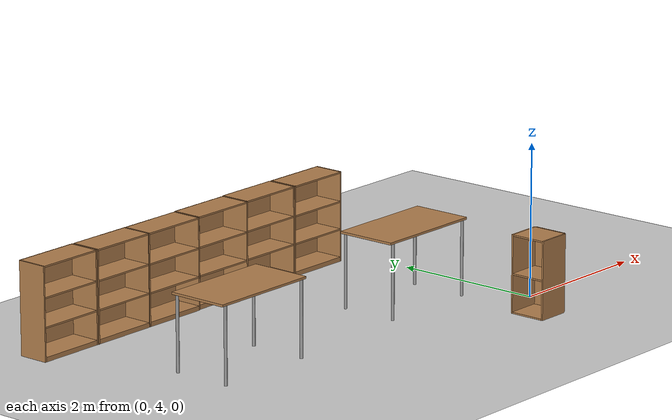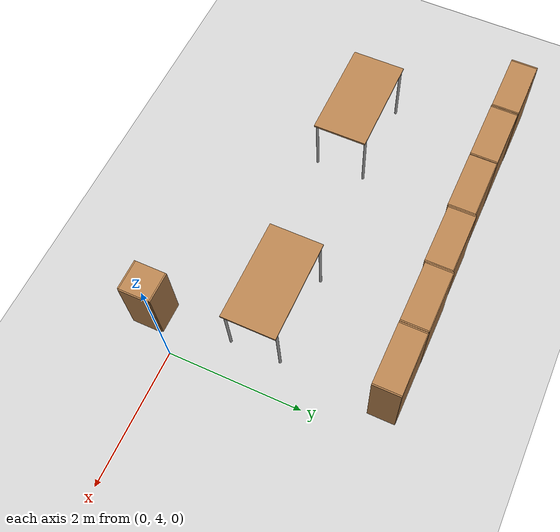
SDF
<sdf version="1.6">
 <world name="default">
  <model name="ground_plane">
   <static>1</static>
   <link name="link">
    <collision name="collision">
     <geometry><plane><normal>0 0 1</normal><size>100 100</size></plane></geometry>
     <surface><friction><ode><mu>100</mu><mu2>50</mu2></ode></friction></surface>
    </collision>
    <visual name="visual">
     <cast_shadows>0</cast_shadows>
     <geometry><plane><normal>0 0 1</normal><size>100 100</size></plane></geometry>
     <material>
      <script><uri>file://media/materials/scripts/gazebo.material</uri><name>Gazebo/Grey</name></script>
     </material>
    </visual>
   </link>
  </model>
  <model name="bookshelf_0">
   <static>1</static>
   <link name="link">
    <inertial><mass>1</mass></inertial>
    <collision name="back">
     <pose>0 0.005 0.6 0 -0 0</pose>
     <geometry><box><size>0.9 0.01 1.2</size></box></geometry>
    </collision>
    <visual name="visual1">
     <pose>0 0.005 0.6 0 -0 0</pose>
     <geometry><box><size>0.9 0.01 1.2</size></box></geometry>
     <material>
      <script><uri>file://media/materials/scripts/gazebo.material</uri><name>Gazebo/Wood</name></script>
     </material>
    </visual>
    <collision name="left_side">
     <pose>0.45 -0.195 0.6 0 -0 0</pose>
     <geometry><box><size>0.02 0.4 1.2</size></box></geometry>
    </collision>
    <visual name="visual2">
     <pose>0.45 -0.195 0.6 0 -0 0</pose>
     <geometry><box><size>0.02 0.4 1.2</size></box></geometry>
     <material>
      <script><uri>file://media/materials/scripts/gazebo.material</uri><name>Gazebo/Wood</name></script>
     </material>
    </visual>
    <collision name="right_side">
     <pose>-0.45 -0.195 0.6 0 -0 0</pose>
     <geometry><box><size>0.02 0.4 1.2</size></box></geometry>
    </collision>
    <visual name="visual3">
     <pose>-0.45 -0.195 0.6 0 -0 0</pose>
     <geometry><box><size>0.02 0.4 1.2</size></box></geometry>
     <material>
      <script><uri>file://media/materials/scripts/gazebo.material</uri><name>Gazebo/Wood</name></script>
     </material>
    </visual>
    <collision name="bottom">
     <pose>0 -0.195 0.03 0 -0 0</pose>
     <geometry><box><size>0.88 0.4 0.06</size></box></geometry>
    </collision>
    <visual name="visual4">
     <pose>0 -0.195 0.03 0 -0 0</pose>
     <geometry><box><size>0.88 0.4 0.06</size></box></geometry>
     <material>
      <script><uri>file://media/materials/scripts/gazebo.material</uri><name>Gazebo/Wood</name></script>
     </material>
    </visual>
    <collision name="top">
     <pose>0 -0.195 1.19 0 -0 0</pose>
     <geometry><box><size>0.88 0.4 0.02</size></box></geometry>
    </collision>
    <visual name="visual5">
     <pose>0 -0.195 1.19 0 -0 0</pose>
     <geometry><box><size>0.88 0.4 0.02</size></box></geometry>
     <material>
      <script><uri>file://media/materials/scripts/gazebo.material</uri><name>Gazebo/Wood</name></script>
     </material>
    </visual>
    <collision name="low_shelf">
     <pose>0 -0.195 0.43 0 -0 0</pose>
     <geometry><box><size>0.88 0.4 0.02</size></box></geometry>
    </collision>
    <visual name="visual6">
     <pose>0 -0.195 0.43 0 -0 0</pose>
     <geometry><box><size>0.88 0.4 0.02</size></box></geometry>
     <material>
      <script><uri>file://media/materials/scripts/gazebo.material</uri><name>Gazebo/Wood</name></script>
     </material>
    </visual>
    <collision name="high_shelf">
     <pose>0 -0.195 0.8 0 -0 0</pose>
     <geometry><box><size>0.88 0.4 0.02</size></box></geometry>
    </collision>
    <visual name="visual7">
     <pose>0 -0.195 0.8 0 -0 0</pose>
     <geometry><box><size>0.88 0.4 0.02</size></box></geometry>
     <material>
      <script><uri>file://media/materials/scripts/gazebo.material</uri><name>Gazebo/Wood</name></script>
     </material>
    </visual>
   </link>
   <pose>-5.37969 7.19324 0 0 -0 0</pose>
  </model>
  <model name="bookshelf_1">
   <static>1</static>
   <link name="link">
    <inertial><mass>1</mass></inertial>
    <collision name="back">
     <pose>0 0.005 0.6 0 -0 0</pose>
     <geometry><box><size>0.9 0.01 1.2</size></box></geometry>
    </collision>
    <visual name="visual1">
     <pose>0 0.005 0.6 0 -0 0</pose>
     <geometry><box><size>0.9 0.01 1.2</size></box></geometry>
     <material>
      <script><uri>file://media/materials/scripts/gazebo.material</uri><name>Gazebo/Wood</name></script>
     </material>
    </visual>
    <collision name="left_side">
     <pose>0.45 -0.195 0.6 0 -0 0</pose>
     <geometry><box><size>0.02 0.4 1.2</size></box></geometry>
    </collision>
    <visual name="visual2">
     <pose>0.45 -0.195 0.6 0 -0 0</pose>
     <geometry><box><size>0.02 0.4 1.2</size></box></geometry>
     <material>
      <script><uri>file://media/materials/scripts/gazebo.material</uri><name>Gazebo/Wood</name></script>
     </material>
    </visual>
    <collision name="right_side">
     <pose>-0.45 -0.195 0.6 0 -0 0</pose>
     <geometry><box><size>0.02 0.4 1.2</size></box></geometry>
    </collision>
    <visual name="visual3">
     <pose>-0.45 -0.195 0.6 0 -0 0</pose>
     <geometry><box><size>0.02 0.4 1.2</size></box></geometry>
     <material>
      <script><uri>file://media/materials/scripts/gazebo.material</uri><name>Gazebo/Wood</name></script>
     </material>
    </visual>
    <collision name="bottom">
     <pose>0 -0.195 0.03 0 -0 0</pose>
     <geometry><box><size>0.88 0.4 0.06</size></box></geometry>
    </collision>
    <visual name="visual4">
     <pose>0 -0.195 0.03 0 -0 0</pose>
     <geometry><box><size>0.88 0.4 0.06</size></box></geometry>
     <material>
      <script><uri>file://media/materials/scripts/gazebo.material</uri><name>Gazebo/Wood</name></script>
     </material>
    </visual>
    <collision name="top">
     <pose>0 -0.195 1.19 0 -0 0</pose>
     <geometry><box><size>0.88 0.4 0.02</size></box></geometry>
    </collision>
    <visual name="visual5">
     <pose>0 -0.195 1.19 0 -0 0</pose>
     <geometry><box><size>0.88 0.4 0.02</size></box></geometry>
     <material>
      <script><uri>file://media/materials/scripts/gazebo.material</uri><name>Gazebo/Wood</name></script>
     </material>
    </visual>
    <collision name="low_shelf">
     <pose>0 -0.195 0.43 0 -0 0</pose>
     <geometry><box><size>0.88 0.4 0.02</size></box></geometry>
    </collision>
    <visual name="visual6">
     <pose>0 -0.195 0.43 0 -0 0</pose>
     <geometry><box><size>0.88 0.4 0.02</size></box></geometry>
     <material>
      <script><uri>file://media/materials/scripts/gazebo.material</uri><name>Gazebo/Wood</name></script>
     </material>
    </visual>
    <collision name="high_shelf">
     <pose>0 -0.195 0.8 0 -0 0</pose>
     <geometry><box><size>0.88 0.4 0.02</size></box></geometry>
    </collision>
    <visual name="visual7">
     <pose>0 -0.195 0.8 0 -0 0</pose>
     <geometry><box><size>0.88 0.4 0.02</size></box></geometry>
     <material>
      <script><uri>file://media/materials/scripts/gazebo.material</uri><name>Gazebo/Wood</name></script>
     </material>
    </visual>
   </link>
   <pose>-4.45545 7.18903 0 0 -0 0</pose>
  </model>
  <model name="bookshelf_2">
   <static>1</static>
   <link name="link">
    <inertial><mass>1</mass></inertial>
    <collision name="back">
     <pose>0 0.005 0.6 0 -0 0</pose>
     <geometry><box><size>0.9 0.01 1.2</size></box></geometry>
    </collision>
    <visual name="visual1">
     <pose>0 0.005 0.6 0 -0 0</pose>
     <geometry><box><size>0.9 0.01 1.2</size></box></geometry>
     <material>
      <script><uri>file://media/materials/scripts/gazebo.material</uri><name>Gazebo/Wood</name></script>
     </material>
    </visual>
    <collision name="left_side">
     <pose>0.45 -0.195 0.6 0 -0 0</pose>
     <geometry><box><size>0.02 0.4 1.2</size></box></geometry>
    </collision>
    <visual name="visual2">
     <pose>0.45 -0.195 0.6 0 -0 0</pose>
     <geometry><box><size>0.02 0.4 1.2</size></box></geometry>
     <material>
      <script><uri>file://media/materials/scripts/gazebo.material</uri><name>Gazebo/Wood</name></script>
     </material>
    </visual>
    <collision name="right_side">
     <pose>-0.45 -0.195 0.6 0 -0 0</pose>
     <geometry><box><size>0.02 0.4 1.2</size></box></geometry>
    </collision>
    <visual name="visual3">
     <pose>-0.45 -0.195 0.6 0 -0 0</pose>
     <geometry><box><size>0.02 0.4 1.2</size></box></geometry>
     <material>
      <script><uri>file://media/materials/scripts/gazebo.material</uri><name>Gazebo/Wood</name></script>
     </material>
    </visual>
    <collision name="bottom">
     <pose>0 -0.195 0.03 0 -0 0</pose>
     <geometry><box><size>0.88 0.4 0.06</size></box></geometry>
    </collision>
    <visual name="visual4">
     <pose>0 -0.195 0.03 0 -0 0</pose>
     <geometry><box><size>0.88 0.4 0.06</size></box></geometry>
     <material>
      <script><uri>file://media/materials/scripts/gazebo.material</uri><name>Gazebo/Wood</name></script>
     </material>
    </visual>
    <collision name="top">
     <pose>0 -0.195 1.19 0 -0 0</pose>
     <geometry><box><size>0.88 0.4 0.02</size></box></geometry>
    </collision>
    <visual name="visual5">
     <pose>0 -0.195 1.19 0 -0 0</pose>
     <geometry><box><size>0.88 0.4 0.02</size></box></geometry>
     <material>
      <script><uri>file://media/materials/scripts/gazebo.material</uri><name>Gazebo/Wood</name></script>
     </material>
    </visual>
    <collision name="low_shelf">
     <pose>0 -0.195 0.43 0 -0 0</pose>
     <geometry><box><size>0.88 0.4 0.02</size></box></geometry>
    </collision>
    <visual name="visual6">
     <pose>0 -0.195 0.43 0 -0 0</pose>
     <geometry><box><size>0.88 0.4 0.02</size></box></geometry>
     <material>
      <script><uri>file://media/materials/scripts/gazebo.material</uri><name>Gazebo/Wood</name></script>
     </material>
    </visual>
    <collision name="high_shelf">
     <pose>0 -0.195 0.8 0 -0 0</pose>
     <geometry><box><size>0.88 0.4 0.02</size></box></geometry>
    </collision>
    <visual name="visual7">
     <pose>0 -0.195 0.8 0 -0 0</pose>
     <geometry><box><size>0.88 0.4 0.02</size></box></geometry>
     <material>
      <script><uri>file://media/materials/scripts/gazebo.material</uri><name>Gazebo/Wood</name></script>
     </material>
    </visual>
   </link>
   <pose>-3.54669 7.18867 0 0 -0 0</pose>
  </model>
  <model name="bookshelf_3">
   <static>1</static>
   <link name="link">
    <inertial><mass>1</mass></inertial>
    <collision name="back">
     <pose>0 0.005 0.6 0 -0 0</pose>
     <geometry><box><size>0.9 0.01 1.2</size></box></geometry>
    </collision>
    <visual name="visual1">
     <pose>0 0.005 0.6 0 -0 0</pose>
     <geometry><box><size>0.9 0.01 1.2</size></box></geometry>
     <material>
      <script><uri>file://media/materials/scripts/gazebo.material</uri><name>Gazebo/Wood</name></script>
     </material>
    </visual>
    <collision name="left_side">
     <pose>0.45 -0.195 0.6 0 -0 0</pose>
     <geometry><box><size>0.02 0.4 1.2</size></box></geometry>
    </collision>
    <visual name="visual2">
     <pose>0.45 -0.195 0.6 0 -0 0</pose>
     <geometry><box><size>0.02 0.4 1.2</size></box></geometry>
     <material>
      <script><uri>file://media/materials/scripts/gazebo.material</uri><name>Gazebo/Wood</name></script>
     </material>
    </visual>
    <collision name="right_side">
     <pose>-0.45 -0.195 0.6 0 -0 0</pose>
     <geometry><box><size>0.02 0.4 1.2</size></box></geometry>
    </collision>
    <visual name="visual3">
     <pose>-0.45 -0.195 0.6 0 -0 0</pose>
     <geometry><box><size>0.02 0.4 1.2</size></box></geometry>
     <material>
      <script><uri>file://media/materials/scripts/gazebo.material</uri><name>Gazebo/Wood</name></script>
     </material>
    </visual>
    <collision name="bottom">
     <pose>0 -0.195 0.03 0 -0 0</pose>
     <geometry><box><size>0.88 0.4 0.06</size></box></geometry>
    </collision>
    <visual name="visual4">
     <pose>0 -0.195 0.03 0 -0 0</pose>
     <geometry><box><size>0.88 0.4 0.06</size></box></geometry>
     <material>
      <script><uri>file://media/materials/scripts/gazebo.material</uri><name>Gazebo/Wood</name></script>
     </material>
    </visual>
    <collision name="top">
     <pose>0 -0.195 1.19 0 -0 0</pose>
     <geometry><box><size>0.88 0.4 0.02</size></box></geometry>
    </collision>
    <visual name="visual5">
     <pose>0 -0.195 1.19 0 -0 0</pose>
     <geometry><box><size>0.88 0.4 0.02</size></box></geometry>
     <material>
      <script><uri>file://media/materials/scripts/gazebo.material</uri><name>Gazebo/Wood</name></script>
     </material>
    </visual>
    <collision name="low_shelf">
     <pose>0 -0.195 0.43 0 -0 0</pose>
     <geometry><box><size>0.88 0.4 0.02</size></box></geometry>
    </collision>
    <visual name="visual6">
     <pose>0 -0.195 0.43 0 -0 0</pose>
     <geometry><box><size>0.88 0.4 0.02</size></box></geometry>
     <material>
      <script><uri>file://media/materials/scripts/gazebo.material</uri><name>Gazebo/Wood</name></script>
     </material>
    </visual>
    <collision name="high_shelf">
     <pose>0 -0.195 0.8 0 -0 0</pose>
     <geometry><box><size>0.88 0.4 0.02</size></box></geometry>
    </collision>
    <visual name="visual7">
     <pose>0 -0.195 0.8 0 -0 0</pose>
     <geometry><box><size>0.88 0.4 0.02</size></box></geometry>
     <material>
      <script><uri>file://media/materials/scripts/gazebo.material</uri><name>Gazebo/Wood</name></script>
     </material>
    </visual>
   </link>
   <pose>-2.62721 7.20542 0 0 -0 0</pose>
  </model>
  <model name="bookshelf_4">
   <static>1</static>
   <link name="link">
    <inertial><mass>1</mass></inertial>
    <collision name="back">
     <pose>0 0.005 0.6 0 -0 0</pose>
     <geometry><box><size>0.9 0.01 1.2</size></box></geometry>
    </collision>
    <visual name="visual1">
     <pose>0 0.005 0.6 0 -0 0</pose>
     <geometry><box><size>0.9 0.01 1.2</size></box></geometry>
     <material>
      <script><uri>file://media/materials/scripts/gazebo.material</uri><name>Gazebo/Wood</name></script>
     </material>
    </visual>
    <collision name="left_side">
     <pose>0.45 -0.195 0.6 0 -0 0</pose>
     <geometry><box><size>0.02 0.4 1.2</size></box></geometry>
    </collision>
    <visual name="visual2">
     <pose>0.45 -0.195 0.6 0 -0 0</pose>
     <geometry><box><size>0.02 0.4 1.2</size></box></geometry>
     <material>
      <script><uri>file://media/materials/scripts/gazebo.material</uri><name>Gazebo/Wood</name></script>
     </material>
    </visual>
    <collision name="right_side">
     <pose>-0.45 -0.195 0.6 0 -0 0</pose>
     <geometry><box><size>0.02 0.4 1.2</size></box></geometry>
    </collision>
    <visual name="visual3">
     <pose>-0.45 -0.195 0.6 0 -0 0</pose>
     <geometry><box><size>0.02 0.4 1.2</size></box></geometry>
     <material>
      <script><uri>file://media/materials/scripts/gazebo.material</uri><name>Gazebo/Wood</name></script>
     </material>
    </visual>
    <collision name="bottom">
     <pose>0 -0.195 0.03 0 -0 0</pose>
     <geometry><box><size>0.88 0.4 0.06</size></box></geometry>
    </collision>
    <visual name="visual4">
     <pose>0 -0.195 0.03 0 -0 0</pose>
     <geometry><box><size>0.88 0.4 0.06</size></box></geometry>
     <material>
      <script><uri>file://media/materials/scripts/gazebo.material</uri><name>Gazebo/Wood</name></script>
     </material>
    </visual>
    <collision name="top">
     <pose>0 -0.195 1.19 0 -0 0</pose>
     <geometry><box><size>0.88 0.4 0.02</size></box></geometry>
    </collision>
    <visual name="visual5">
     <pose>0 -0.195 1.19 0 -0 0</pose>
     <geometry><box><size>0.88 0.4 0.02</size></box></geometry>
     <material>
      <script><uri>file://media/materials/scripts/gazebo.material</uri><name>Gazebo/Wood</name></script>
     </material>
    </visual>
    <collision name="low_shelf">
     <pose>0 -0.195 0.43 0 -0 0</pose>
     <geometry><box><size>0.88 0.4 0.02</size></box></geometry>
    </collision>
    <visual name="visual6">
     <pose>0 -0.195 0.43 0 -0 0</pose>
     <geometry><box><size>0.88 0.4 0.02</size></box></geometry>
     <material>
      <script><uri>file://media/materials/scripts/gazebo.material</uri><name>Gazebo/Wood</name></script>
     </material>
    </visual>
    <collision name="high_shelf">
     <pose>0 -0.195 0.8 0 -0 0</pose>
     <geometry><box><size>0.88 0.4 0.02</size></box></geometry>
    </collision>
    <visual name="visual7">
     <pose>0 -0.195 0.8 0 -0 0</pose>
     <geometry><box><size>0.88 0.4 0.02</size></box></geometry>
     <material>
      <script><uri>file://media/materials/scripts/gazebo.material</uri><name>Gazebo/Wood</name></script>
     </material>
    </visual>
   </link>
   <pose>-1.71029 7.22259 0 0 -0 0</pose>
  </model>
  <model name="bookshelf_5">
   <static>1</static>
   <link name="link">
    <inertial><mass>1</mass></inertial>
    <collision name="back">
     <pose>0 0.005 0.6 0 -0 0</pose>
     <geometry><box><size>0.9 0.01 1.2</size></box></geometry>
    </collision>
    <visual name="visual1">
     <pose>0 0.005 0.6 0 -0 0</pose>
     <geometry><box><size>0.9 0.01 1.2</size></box></geometry>
     <material>
      <script><uri>file://media/materials/scripts/gazebo.material</uri><name>Gazebo/Wood</name></script>
     </material>
    </visual>
    <collision name="left_side">
     <pose>0.45 -0.195 0.6 0 -0 0</pose>
     <geometry><box><size>0.02 0.4 1.2</size></box></geometry>
    </collision>
    <visual name="visual2">
     <pose>0.45 -0.195 0.6 0 -0 0</pose>
     <geometry><box><size>0.02 0.4 1.2</size></box></geometry>
     <material>
      <script><uri>file://media/materials/scripts/gazebo.material</uri><name>Gazebo/Wood</name></script>
     </material>
    </visual>
    <collision name="right_side">
     <pose>-0.45 -0.195 0.6 0 -0 0</pose>
     <geometry><box><size>0.02 0.4 1.2</size></box></geometry>
    </collision>
    <visual name="visual3">
     <pose>-0.45 -0.195 0.6 0 -0 0</pose>
     <geometry><box><size>0.02 0.4 1.2</size></box></geometry>
     <material>
      <script><uri>file://media/materials/scripts/gazebo.material</uri><name>Gazebo/Wood</name></script>
     </material>
    </visual>
    <collision name="bottom">
     <pose>0 -0.195 0.03 0 -0 0</pose>
     <geometry><box><size>0.88 0.4 0.06</size></box></geometry>
    </collision>
    <visual name="visual4">
     <pose>0 -0.195 0.03 0 -0 0</pose>
     <geometry><box><size>0.88 0.4 0.06</size></box></geometry>
     <material>
      <script><uri>file://media/materials/scripts/gazebo.material</uri><name>Gazebo/Wood</name></script>
     </material>
    </visual>
    <collision name="top">
     <pose>0 -0.195 1.19 0 -0 0</pose>
     <geometry><box><size>0.88 0.4 0.02</size></box></geometry>
    </collision>
    <visual name="visual5">
     <pose>0 -0.195 1.19 0 -0 0</pose>
     <geometry><box><size>0.88 0.4 0.02</size></box></geometry>
     <material>
      <script><uri>file://media/materials/scripts/gazebo.material</uri><name>Gazebo/Wood</name></script>
     </material>
    </visual>
    <collision name="low_shelf">
     <pose>0 -0.195 0.43 0 -0 0</pose>
     <geometry><box><size>0.88 0.4 0.02</size></box></geometry>
    </collision>
    <visual name="visual6">
     <pose>0 -0.195 0.43 0 -0 0</pose>
     <geometry><box><size>0.88 0.4 0.02</size></box></geometry>
     <material>
      <script><uri>file://media/materials/scripts/gazebo.material</uri><name>Gazebo/Wood</name></script>
     </material>
    </visual>
    <collision name="high_shelf">
     <pose>0 -0.195 0.8 0 -0 0</pose>
     <geometry><box><size>0.88 0.4 0.02</size></box></geometry>
    </collision>
    <visual name="visual7">
     <pose>0 -0.195 0.8 0 -0 0</pose>
     <geometry><box><size>0.88 0.4 0.02</size></box></geometry>
     <material>
      <script><uri>file://media/materials/scripts/gazebo.material</uri><name>Gazebo/Wood</name></script>
     </material>
    </visual>
   </link>
   <pose>-0.788375 7.22091 0 0 -0 0</pose>
  </model>
  <model name="cabinet_4">
   <static>1</static>
   <link name="cabinet_bottom_plate">
    <inertial>
     <pose>0 0 -1 0 -0 0</pose>
     <inertia><ixx>2.05</ixx><ixy>0</ixy><ixz>0</ixz><iyy>2.05</iyy><iyz>0</iyz><izz>2.05</izz></inertia>
     <mass>25</mass>
    </inertial>
    <collision name="cabinet_bottom_plate_geom">
     <pose>0 0 0.01 0 -0 0</pose>
     <geometry><box><size>0.45 0.45 0.02</size></box></geometry>
    </collision>
    <visual name="cabinet_bottom_plate_geom_visual">
     <pose>0 0 0.01 0 -0 0</pose>
     <geometry><box><size>0.45 0.45 0.02</size></box></geometry>
     <material>
      <script><uri>file://media/materials/scripts/gazebo.material</uri><name>Gazebo/Wood</name></script>
     </material>
    </visual>
    <collision name="cabinet_bottom_plate_geom_cabinet_back_plate">
     <pose>0.235 0 0.51 0 -0 0</pose>
     <geometry><box><size>0.02 0.45 1.02</size></box></geometry>
    </collision>
    <visual name="cabinet_bottom_plate_geom_cabinet_back_plate_visual">
     <pose>0.235 0 0.51 0 -0 0</pose>
     <geometry><box><size>0.02 0.45 1.02</size></box></geometry>
     <material>
      <script><uri>file://media/materials/scripts/gazebo.material</uri><name>Gazebo/Wood</name></script>
     </material>
    </visual>
    <collision name="cabinet_bottom_plate_geom_cabinet_left_plate">
     <pose>0 0.235 0.51 0 -0 0</pose>
     <geometry><box><size>0.45 0.02 1.02</size></box></geometry>
    </collision>
    <visual name="cabinet_bottom_plate_geom_cabinet_left_plate_visual">
     <pose>0 0.235 0.51 0 -0 0</pose>
     <geometry><box><size>0.45 0.02 1.02</size></box></geometry>
     <material>
      <script><uri>file://media/materials/scripts/gazebo.material</uri><name>Gazebo/Wood</name></script>
     </material>
    </visual>
    <collision name="cabinet_bottom_plate_geom_cabinet_middle_plate">
     <pose>0 0 0.51 0 -0 0</pose>
     <geometry><box><size>0.45 0.45 0.02</size></box></geometry>
    </collision>
    <visual name="cabinet_bottom_plate_geom_cabinet_middle_plate_visual">
     <pose>0 0 0.51 0 -0 0</pose>
     <geometry><box><size>0.45 0.45 0.02</size></box></geometry>
     <material>
      <script><uri>file://media/materials/scripts/gazebo.material</uri><name>Gazebo/Wood</name></script>
     </material>
    </visual>
    <collision name="cabinet_bottom_plate_geom_cabinet_right_plate">
     <pose>0 -0.235 0.51 0 -0 0</pose>
     <geometry><box><size>0.45 0.02 1.02</size></box></geometry>
    </collision>
    <visual name="cabinet_bottom_plate_geom_cabinet_right_plate_visual">
     <pose>0 -0.235 0.51 0 -0 0</pose>
     <geometry><box><size>0.45 0.02 1.02</size></box></geometry>
     <material>
      <script><uri>file://media/materials/scripts/gazebo.material</uri><name>Gazebo/Wood</name></script>
     </material>
    </visual>
    <collision name="cabinet_bottom_plate_geom_cabinet_top_plate">
     <pose>0 0 1.01 0 -0 0</pose>
     <geometry><box><size>0.45 0.45 0.02</size></box></geometry>
    </collision>
    <visual name="cabinet_bottom_plate_geom_cabinet_top_plate_visual">
     <pose>0 0 1.01 0 -0 0</pose>
     <geometry><box><size>0.45 0.45 0.02</size></box></geometry>
     <material>
      <script><uri>file://media/materials/scripts/gazebo.material</uri><name>Gazebo/Wood</name></script>
     </material>
    </visual>
   </link>
   <pose>-0.472593 3.51399 0 0 -0 0</pose>
  </model>
  <model name="table_1">
   <static>1</static>
   <link name="link">
    <collision name="surface">
     <pose>0 0 1 0 -0 0</pose>
     <geometry><box><size>1.5 0.8 0.03</size></box></geometry>
     <surface><friction><ode><mu>0.6</mu><mu2>0.6</mu2></ode></friction></surface>
    </collision>
    <visual name="visual1">
     <pose>0 0 1 0 -0 0</pose>
     <geometry><box><size>1.5 0.8 0.03</size></box></geometry>
     <material>
      <script><uri>file://media/materials/scripts/gazebo.material</uri><name>Gazebo/Wood</name></script>
     </material>
    </visual>
    <collision name="front_left_leg">
     <pose>0.68 0.38 0.5 0 -0 0</pose>
     <geometry><cylinder><radius>0.02</radius><length>1</length></cylinder></geometry>
    </collision>
    <visual name="front_left_leg">
     <pose>0.68 0.38 0.5 0 -0 0</pose>
     <geometry><cylinder><radius>0.02</radius><length>1</length></cylinder></geometry>
     <material>
      <script><uri>file://media/materials/scripts/gazebo.material</uri><name>Gazebo/Grey</name></script>
     </material>
    </visual>
    <collision name="front_right_leg">
     <pose>0.68 -0.38 0.5 0 -0 0</pose>
     <geometry><cylinder><radius>0.02</radius><length>1</length></cylinder></geometry>
    </collision>
    <visual name="front_right_leg">
     <pose>0.68 -0.38 0.5 0 -0 0</pose>
     <geometry><cylinder><radius>0.02</radius><length>1</length></cylinder></geometry>
     <material>
      <script><uri>file://media/materials/scripts/gazebo.material</uri><name>Gazebo/Grey</name></script>
     </material>
    </visual>
    <collision name="back_right_leg">
     <pose>-0.68 -0.38 0.5 0 -0 0</pose>
     <geometry><cylinder><radius>0.02</radius><length>1</length></cylinder></geometry>
    </collision>
    <visual name="back_right_leg">
     <pose>-0.68 -0.38 0.5 0 -0 0</pose>
     <geometry><cylinder><radius>0.02</radius><length>1</length></cylinder></geometry>
     <material>
      <script><uri>file://media/materials/scripts/gazebo.material</uri><name>Gazebo/Grey</name></script>
     </material>
    </visual>
    <collision name="back_left_leg">
     <pose>-0.68 0.38 0.5 0 -0 0</pose>
     <geometry><cylinder><radius>0.02</radius><length>1</length></cylinder></geometry>
    </collision>
    <visual name="back_left_leg">
     <pose>-0.68 0.38 0.5 0 -0 0</pose>
     <geometry><cylinder><radius>0.02</radius><length>1</length></cylinder></geometry>
     <material>
      <script><uri>file://media/materials/scripts/gazebo.material</uri><name>Gazebo/Grey</name></script>
     </material>
    </visual>
   </link>
   <pose>-1.19004 5.07331 0 0 -0 0</pose>
  </model>
  <model name="table_2">
   <static>1</static>
   <link name="link">
    <collision name="surface">
     <pose>0 0 1 0 -0 0</pose>
     <geometry><box><size>1.5 0.8 0.03</size></box></geometry>
     <surface><friction><ode><mu>0.6</mu><mu2>0.6</mu2></ode></friction></surface>
    </collision>
    <visual name="visual1">
     <pose>0 0 1 0 -0 0</pose>
     <geometry><box><size>1.5 0.8 0.03</size></box></geometry>
     <material>
      <script><uri>file://media/materials/scripts/gazebo.material</uri><name>Gazebo/Wood</name></script>
     </material>
    </visual>
    <collision name="front_left_leg">
     <pose>0.68 0.38 0.5 0 -0 0</pose>
     <geometry><cylinder><radius>0.02</radius><length>1</length></cylinder></geometry>
    </collision>
    <visual name="front_left_leg">
     <pose>0.68 0.38 0.5 0 -0 0</pose>
     <geometry><cylinder><radius>0.02</radius><length>1</length></cylinder></geometry>
     <material>
      <script><uri>file://media/materials/scripts/gazebo.material</uri><name>Gazebo/Grey</name></script>
     </material>
    </visual>
    <collision name="front_right_leg">
     <pose>0.68 -0.38 0.5 0 -0 0</pose>
     <geometry><cylinder><radius>0.02</radius><length>1</length></cylinder></geometry>
    </collision>
    <visual name="front_right_leg">
     <pose>0.68 -0.38 0.5 0 -0 0</pose>
     <geometry><cylinder><radius>0.02</radius><length>1</length></cylinder></geometry>
     <material>
      <script><uri>file://media/materials/scripts/gazebo.material</uri><name>Gazebo/Grey</name></script>
     </material>
    </visual>
    <collision name="back_right_leg">
     <pose>-0.68 -0.38 0.5 0 -0 0</pose>
     <geometry><cylinder><radius>0.02</radius><length>1</length></cylinder></geometry>
    </collision>
    <visual name="back_right_leg">
     <pose>-0.68 -0.38 0.5 0 -0 0</pose>
     <geometry><cylinder><radius>0.02</radius><length>1</length></cylinder></geometry>
     <material>
      <script><uri>file://media/materials/scripts/gazebo.material</uri><name>Gazebo/Grey</name></script>
     </material>
    </visual>
    <collision name="back_left_leg">
     <pose>-0.68 0.38 0.5 0 -0 0</pose>
     <geometry><cylinder><radius>0.02</radius><length>1</length></cylinder></geometry>
    </collision>
    <visual name="back_left_leg">
     <pose>-0.68 0.38 0.5 0 -0 0</pose>
     <geometry><cylinder><radius>0.02</radius><length>1</length></cylinder></geometry>
     <material>
      <script><uri>file://media/materials/scripts/gazebo.material</uri><name>Gazebo/Grey</name></script>
     </material>
    </visual>
   </link>
   <pose>-4.4197 4.94848 0 0 -0 0</pose>
  </model>
 </world>
</sdf>
